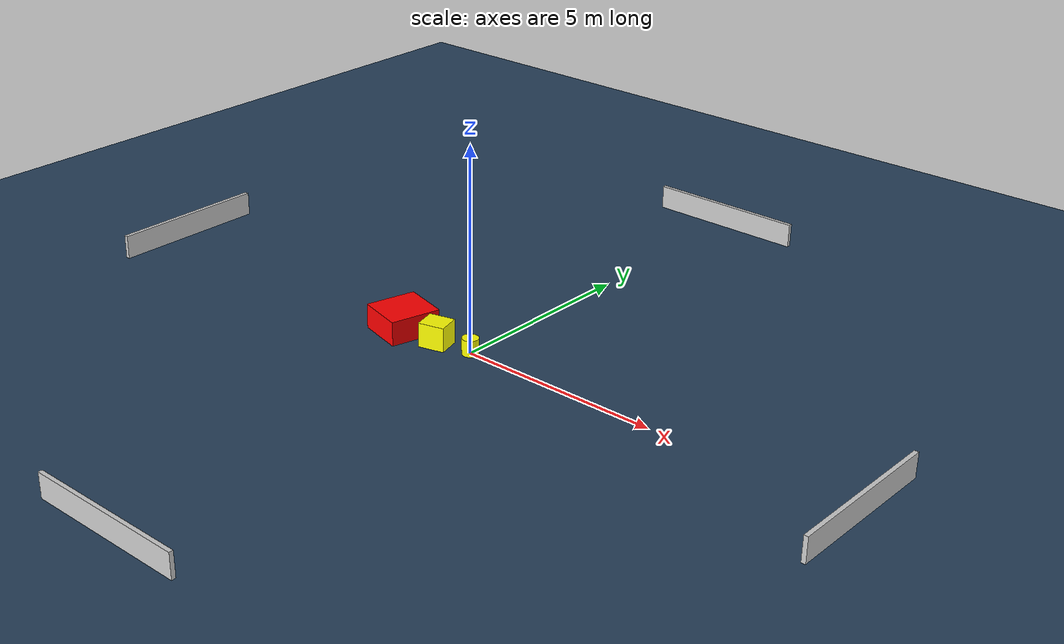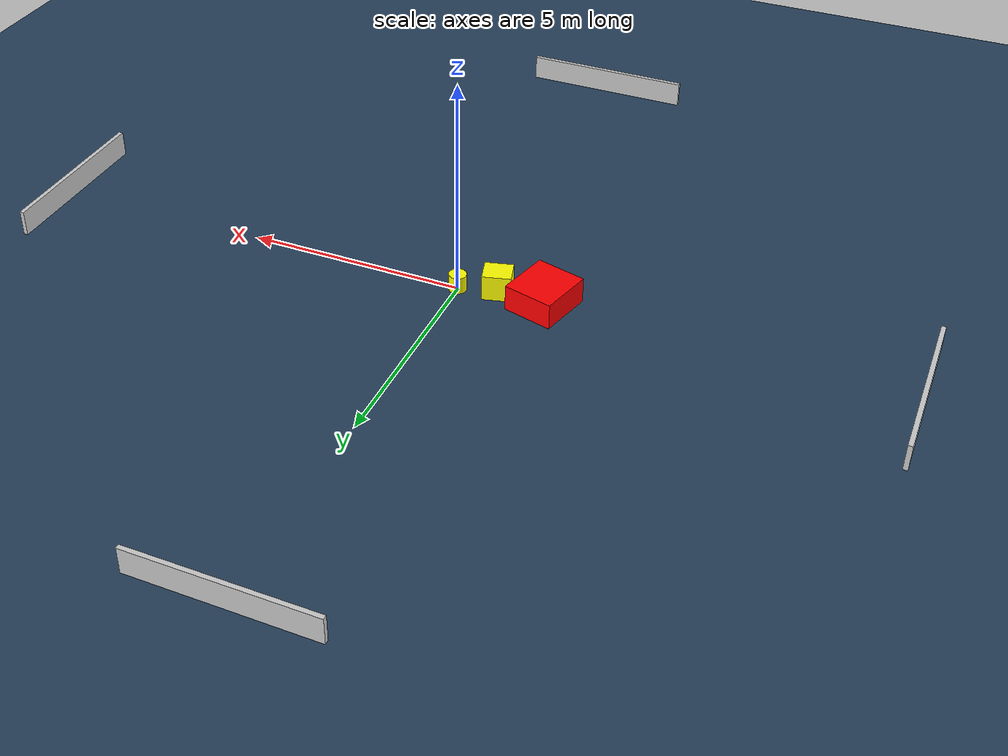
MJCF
<?xml version="1.0" ?>
<mujoco model="generated_environment">
  <option timestep="0.01" integrator="RK4" cone="elliptic"/>
  <default>
    <geom density="1"/>
  </default>
  <asset>
    <texture builtin="gradient" height="3072" name="skybox" rgb1="0.3 0.5 0.7" rgb2="0 0 0" type="skybox" width="512"/>
    <texture builtin="checker" height="300" name="groundplane" rgb1="0.2 0.3 0.4" rgb2="0.1 0.2 0.3" type="2d" width="300"/>
    <material name="groundplane" reflectance="0.2" texrepeat="5 5" texture="groundplane"/>
  </asset>
  <worldbody>
    <light dir="0 0 -1" directional="true" pos="0 0 1.5"/>
    <geom condim="3" friction="0.5 0.005 0.001" material="groundplane" name="floor" pos="0 0 0" size="0 0 0.05" type="plane"/>
    <body name="walls">
      <geom name="wall_1" condim="4" pos="-10.0 0.0 0.3" rgba="0.800000011920929 0.800000011920929 0.800000011920929 1.0" size="0.05 2.0 0.3" type="box"/>
      <geom name="wall_2" condim="4" pos="10.0 0.0 0.3" rgba="0.800000011920929 0.800000011920929 0.800000011920929 1.0" size="0.05 2.0 0.3" type="box"/>
      <geom name="wall_3" condim="4" pos="0.0 -10.0 0.3" rgba="0.800000011920929 0.800000011920929 0.800000011920929 1.0" size="2.0 0.05 0.3" type="box"/>
      <geom name="wall_4" condim="4" pos="0.0 10.0 0.3" rgba="0.800000011920929 0.800000011920929 0.800000011920929 1.0" size="2.0 0.05 0.3" type="box"/>
    </body>
    <body name="robot">
      <joint name="joint_x" type="slide" pos="0 0 0" axis="1 0 0"/>
      <joint name="joint_y" type="slide" pos="0 0 0" axis="0 1 0"/>
      <geom name="robot" type="cylinder" pos="0.0 0.0 0.2" size="0.2 0.2 0.0" mass="5.0" friction="1.0 0.005 0.0001" condim="4" rgba="1.0 1.0 0.0 1.0"/>
    </body>
    <body name="obstacle_1_movable">
      <geom name="obstacle_1_movable" condim="4" pos="-0.8607831863254646 -0.1925915291340195 0.3" euler="0 0 194.8930599178721" friction="0.0 0.005 0.001" rgba="1.0 1.0 0.0 1.0" size="0.31984577836513334 0.2795918495536441 0.3" type="box" mass="0.1"/>
      <joint type="free"/>
    </body>
    <body name="obstacle_2_static">
      <geom name="obstacle_2_static" condim="4" pos="-1.9409010480242086 -0.18144298283003749 0.3" euler="0 0 75.17866923751107" friction="0.0 0.005 0.001" rgba="1.0 0.0 0.0 1.0" size="0.627383980526319 0.5780827928920664 0.3" type="box"/>
    </body>
  </worldbody>
  <actuator>
    <motor name="actuator_x" joint="joint_x" gear="1" ctrlrange="-1 1"/>
    <motor name="actuator_y" joint="joint_y" gear="1" ctrlrange="-1 1"/>
  </actuator>
</mujoco>
